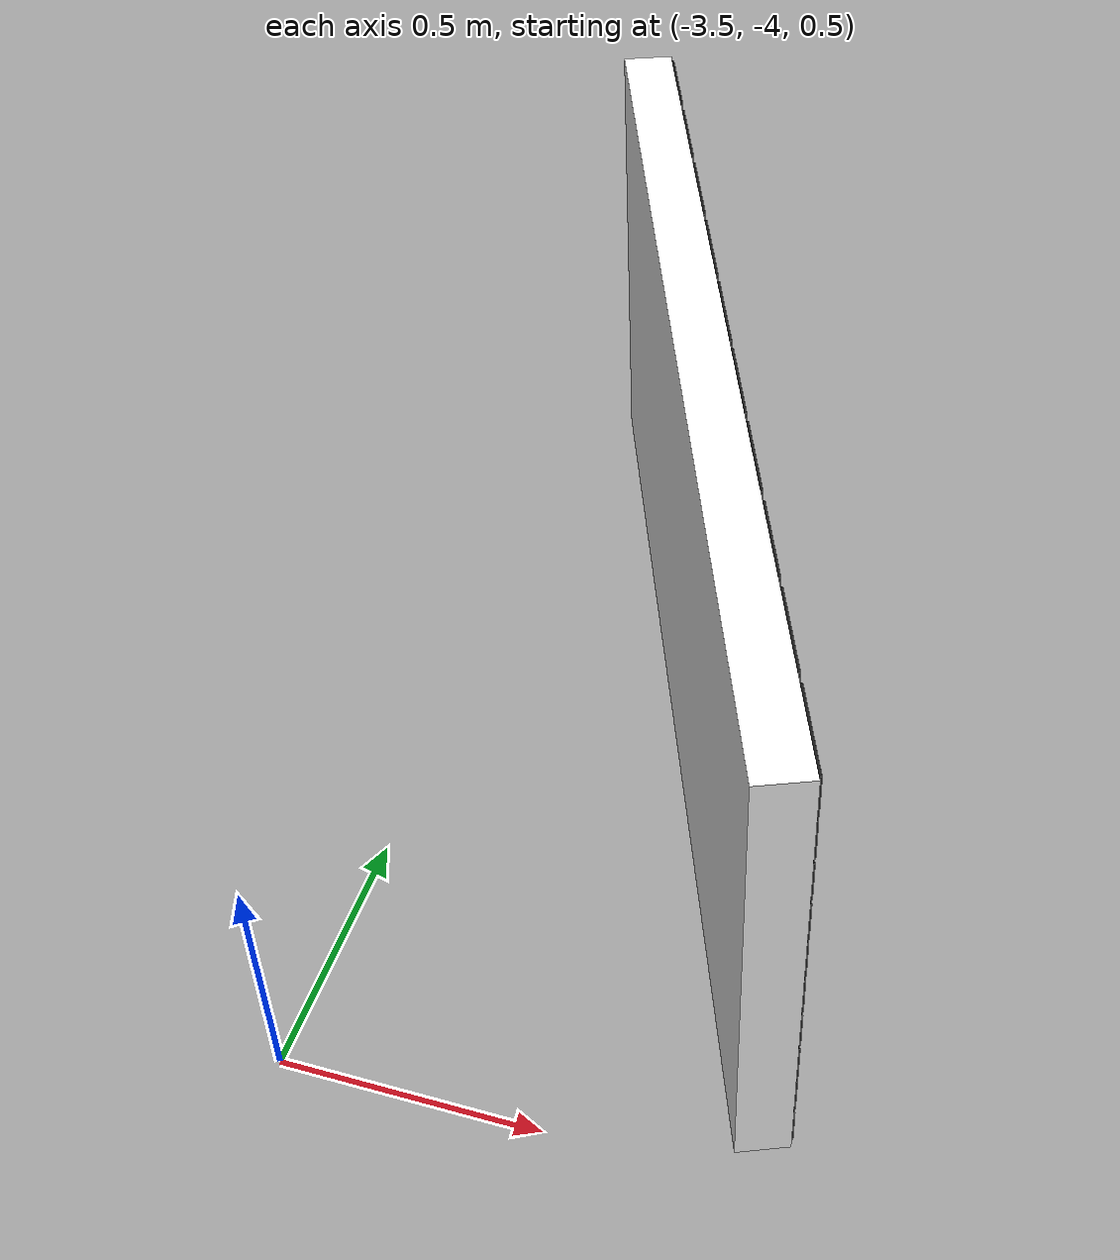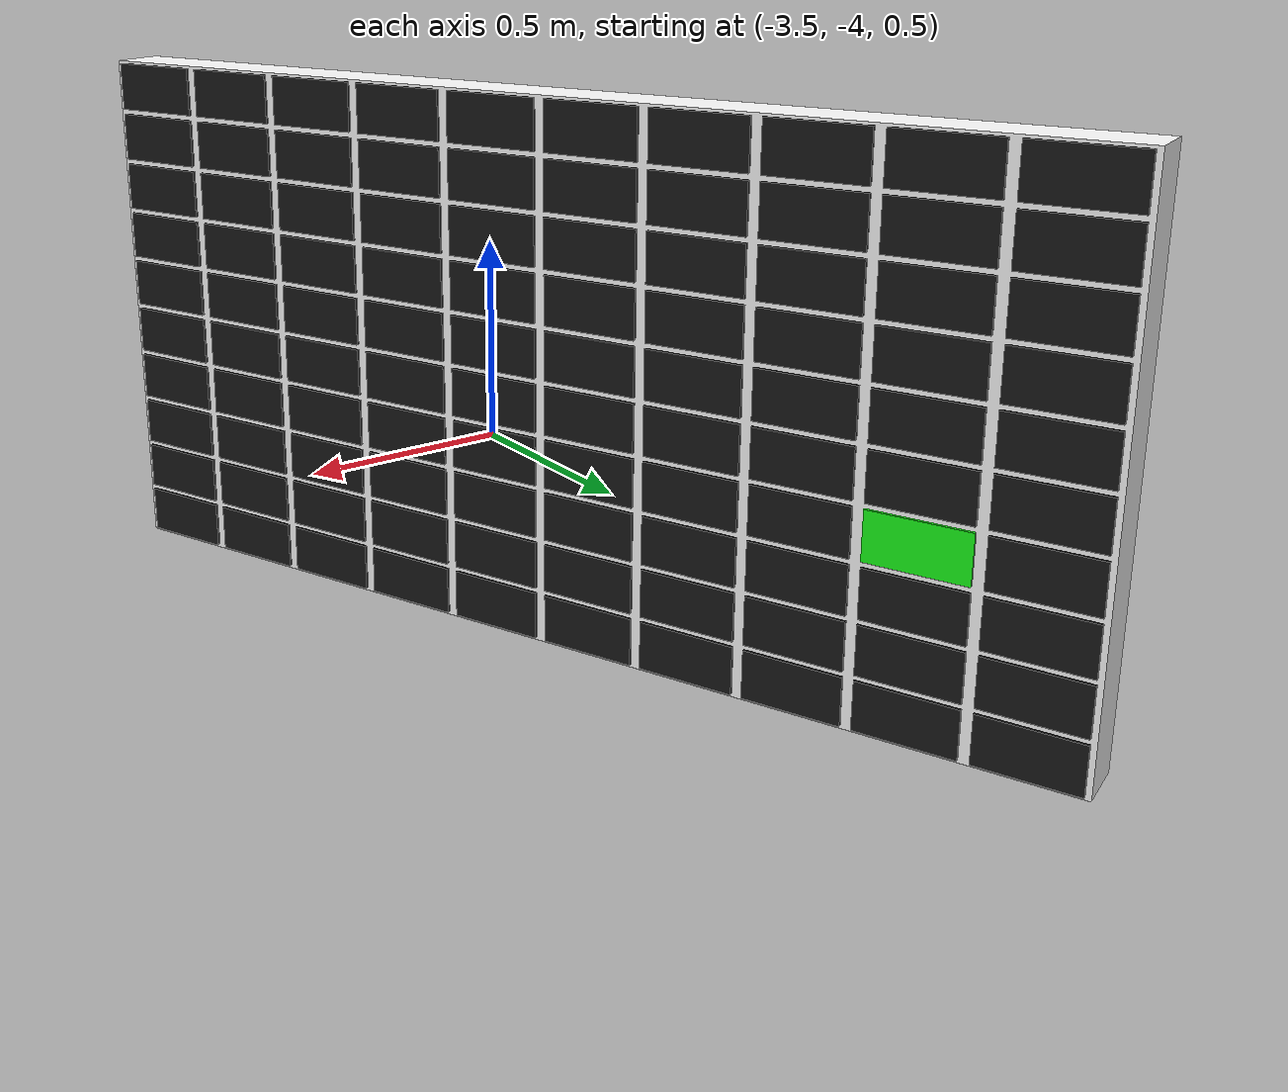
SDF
<sdf version="1.9">
 <world name="forest_with_panels">
  <model name="panel_3">
   <pose>-3 -3 1 -2.75 -1.57 0</pose>
   <static>true</static>
   <link name="panel_outline">
    <visual name="panel_outline_visual">
     <geometry><box><size>1.0 2.0 0.1</size></box></geometry>
     <material>
      <ambient>1.0 1.0 1.0 1</ambient>
      <diffuse>1.0 1.0 1.0 1</diffuse>
      <specular>1.0 1.0 1.0 1</specular>
      <emissive>0 0 0 0</emissive>
     </material>
    </visual>
   </link>
   <link name="block_1_1">
    <visual name="block_1_1_visual">
     <pose>0.45 0.9 0.05 0 0 0</pose>
     <geometry><box><size>0.09 0.18 0.01</size></box></geometry>
     <material>
      <ambient>0.0 0.0 0.0 1</ambient>
      <diffuse>0.1 0.1 0.1 1</diffuse>
      <specular>0.1 0.1 0.1 1</specular>
      <emissive>0 0 0 0</emissive>
     </material>
    </visual>
   </link>
   <link name="block_2_1">
    <visual name="block_2_1_visual">
     <pose>0.35 0.9 0.05 0 0 0</pose>
     <geometry><box><size>0.09 0.18 0.01</size></box></geometry>
     <material>
      <ambient>0.0 0.0 0.0 1</ambient>
      <diffuse>0.1 0.1 0.1 1</diffuse>
      <specular>0.1 0.1 0.1 1</specular>
      <emissive>0 0 0 0</emissive>
     </material>
    </visual>
   </link>
   <link name="block_3_1">
    <visual name="block_3_1_visual">
     <pose>0.25 0.9 0.05 0 0 0</pose>
     <geometry><box><size>0.09 0.18 0.01</size></box></geometry>
     <material>
      <ambient>0.0 0.0 0.0 1</ambient>
      <diffuse>0.1 0.1 0.1 1</diffuse>
      <specular>0.1 0.1 0.1 1</specular>
      <emissive>0 0 0 0</emissive>
     </material>
    </visual>
   </link>
   <link name="block_4_1">
    <visual name="block_4_1_visual">
     <pose>0.15 0.9 0.05 0 0 0</pose>
     <geometry><box><size>0.09 0.18 0.01</size></box></geometry>
     <material>
      <ambient>0.0 0.0 0.0 1</ambient>
      <diffuse>0.1 0.1 0.1 1</diffuse>
      <specular>0.1 0.1 0.1 1</specular>
      <emissive>0 0 0 0</emissive>
     </material>
    </visual>
   </link>
   <link name="block_5_1">
    <visual name="block_5_1_visual">
     <pose>0.05 0.9 0.05 0 0 0</pose>
     <geometry><box><size>0.09 0.18 0.01</size></box></geometry>
     <material>
      <ambient>0.0 0.0 0.0 1</ambient>
      <diffuse>0.1 0.1 0.1 1</diffuse>
      <specular>0.1 0.1 0.1 1</specular>
      <emissive>0 0 0 0</emissive>
     </material>
    </visual>
   </link>
   <link name="block_6_1">
    <visual name="block_6_1_visual">
     <pose>-0.05 0.9 0.05 0 0 0</pose>
     <geometry><box><size>0.09 0.18 0.01</size></box></geometry>
     <material>
      <ambient>0.0 0.0 0.0 1</ambient>
      <diffuse>0.1 0.1 0.1 1</diffuse>
      <specular>0.1 0.1 0.1 1</specular>
      <emissive>0 0 0 0</emissive>
     </material>
    </visual>
   </link>
   <link name="block_7_1">
    <visual name="block_7_1_visual">
     <pose>-0.15 0.9 0.05 0 0 0</pose>
     <geometry><box><size>0.09 0.18 0.01</size></box></geometry>
     <material>
      <ambient>0.0 0.0 0.0 1</ambient>
      <diffuse>0.1 0.1 0.1 1</diffuse>
      <specular>0.1 0.1 0.1 1</specular>
      <emissive>0 0 0 0</emissive>
     </material>
    </visual>
   </link>
   <link name="block_8_1">
    <visual name="block_8_1_visual">
     <pose>-0.25 0.9 0.05 0 0 0</pose>
     <geometry><box><size>0.09 0.18 0.01</size></box></geometry>
     <material>
      <ambient>0.0 0.0 0.0 1</ambient>
      <diffuse>0.1 0.1 0.1 1</diffuse>
      <specular>0.1 0.1 0.1 1</specular>
      <emissive>0 0 0 0</emissive>
     </material>
    </visual>
   </link>
   <link name="block_9_1">
    <visual name="block_9_1_visual">
     <pose>-0.35 0.9 0.05 0 0 0</pose>
     <geometry><box><size>0.09 0.18 0.01</size></box></geometry>
     <material>
      <ambient>0.0 0.0 0.0 1</ambient>
      <diffuse>0.1 0.1 0.1 1</diffuse>
      <specular>0.1 0.1 0.1 1</specular>
      <emissive>0 0 0 0</emissive>
     </material>
    </visual>
   </link>
   <link name="block_10_1">
    <visual name="block_10_1_visual">
     <pose>-0.45 0.9 0.05 0 0 0</pose>
     <geometry><box><size>0.09 0.18 0.01</size></box></geometry>
     <material>
      <ambient>0.0 0.0 0.0 1</ambient>
      <diffuse>0.1 0.1 0.1 1</diffuse>
      <specular>0.1 0.1 0.1 1</specular>
      <emissive>0 0 0 0</emissive>
     </material>
    </visual>
   </link>
   <link name="block_1_2">
    <visual name="block_1_2_visual">
     <pose>0.45 0.7 0.05 0 0 0</pose>
     <geometry><box><size>0.09 0.18 0.01</size></box></geometry>
     <material>
      <ambient>0.0 0.0 0.0 1</ambient>
      <diffuse>0.1 0.1 0.1 1</diffuse>
      <specular>0.1 0.1 0.1 1</specular>
      <emissive>0 0 0 0</emissive>
     </material>
    </visual>
   </link>
   <link name="block_2_2">
    <visual name="block_2_2_visual">
     <pose>0.35 0.7 0.05 0 0 0</pose>
     <geometry><box><size>0.09 0.18 0.01</size></box></geometry>
     <material>
      <ambient>0.0 0.0 0.0 1</ambient>
      <diffuse>0.1 0.1 0.1 1</diffuse>
      <specular>0.1 0.1 0.1 1</specular>
      <emissive>0 0 0 0</emissive>
     </material>
    </visual>
   </link>
   <link name="block_3_2">
    <visual name="block_3_2_visual">
     <pose>0.25 0.7 0.05 0 0 0</pose>
     <geometry><box><size>0.09 0.18 0.01</size></box></geometry>
     <material>
      <ambient>0.0 0.0 0.0 1</ambient>
      <diffuse>0.1 0.1 0.1 1</diffuse>
      <specular>0.1 0.1 0.1 1</specular>
      <emissive>0 0 0 0</emissive>
     </material>
    </visual>
   </link>
   <link name="block_4_2">
    <visual name="block_4_2_visual">
     <pose>0.15 0.7 0.05 0 0 0</pose>
     <geometry><box><size>0.09 0.18 0.01</size></box></geometry>
     <material>
      <ambient>0.0 0.0 0.0 1</ambient>
      <diffuse>0.1 0.1 0.1 1</diffuse>
      <specular>0.1 0.1 0.1 1</specular>
      <emissive>0 0 0 0</emissive>
     </material>
    </visual>
   </link>
   <link name="block_5_2">
    <visual name="block_5_2_visual">
     <pose>0.05 0.7 0.05 0 0 0</pose>
     <geometry><box><size>0.09 0.18 0.01</size></box></geometry>
     <material>
      <ambient>0.0 0.0 0.0 1</ambient>
      <diffuse>0.1 0.1 0.1 1</diffuse>
      <specular>0.1 0.1 0.1 1</specular>
      <emissive>0 0 0 0</emissive>
     </material>
    </visual>
   </link>
   <link name="block_6_2">
    <visual name="block_6_2_visual">
     <pose>-0.05 0.7 0.05 0 0 0</pose>
     <geometry><box><size>0.09 0.18 0.01</size></box></geometry>
     <material>
      <ambient>0.0 0.0 0.0 1</ambient>
      <diffuse>0.1 0.1 0.1 1</diffuse>
      <specular>0.1 0.1 0.1 1</specular>
      <emissive>0 0 0 0</emissive>
     </material>
    </visual>
   </link>
   <link name="block_7_2">
    <visual name="block_7_2_visual">
     <pose>-0.15 0.7 0.05 0 0 0</pose>
     <geometry><box><size>0.09 0.18 0.01</size></box></geometry>
     <material>
      <ambient>0.0 0.0 0.0 1</ambient>
      <diffuse>0.1 0.1 0.1 1</diffuse>
      <specular>0.1 0.1 0.1 1</specular>
      <emissive>0 0 0 0</emissive>
     </material>
    </visual>
   </link>
   <link name="block_8_2">
    <visual name="block_8_2_visual">
     <pose>-0.25 0.7 0.05 0 0 0</pose>
     <geometry><box><size>0.09 0.18 0.01</size></box></geometry>
     <material>
      <ambient>0.0 0.0 0.0 1</ambient>
      <diffuse>0.1 0.1 0.1 1</diffuse>
      <specular>0.1 0.1 0.1 1</specular>
      <emissive>0 0 0 0</emissive>
     </material>
    </visual>
   </link>
   <link name="block_9_2">
    <visual name="block_9_2_visual">
     <pose>-0.35 0.7 0.05 0 0 0</pose>
     <geometry><box><size>0.09 0.18 0.01</size></box></geometry>
     <material>
      <ambient>0.0 0.0 0.0 1</ambient>
      <diffuse>0.1 0.1 0.1 1</diffuse>
      <specular>0.1 0.1 0.1 1</specular>
      <emissive>0 0 0 0</emissive>
     </material>
    </visual>
   </link>
   <link name="block_10_2">
    <visual name="block_10_2_visual">
     <pose>-0.45 0.7 0.05 0 0 0</pose>
     <geometry><box><size>0.09 0.18 0.01</size></box></geometry>
     <material>
      <ambient>0.0 0.0 0.0 1</ambient>
      <diffuse>0.1 0.1 0.1 1</diffuse>
      <specular>0.1 0.1 0.1 1</specular>
      <emissive>0 0 0 0</emissive>
     </material>
    </visual>
   </link>
   <link name="block_1_3">
    <visual name="block_1_3_visual">
     <pose>0.45 0.5 0.05 0 0 0</pose>
     <geometry><box><size>0.09 0.18 0.01</size></box></geometry>
     <material>
      <ambient>0.0 0.0 0.0 1</ambient>
      <diffuse>0.1 0.1 0.1 1</diffuse>
      <specular>0.1 0.1 0.1 1</specular>
      <emissive>0 0 0 0</emissive>
     </material>
    </visual>
   </link>
   <link name="block_2_3">
    <visual name="block_2_3_visual">
     <pose>0.35 0.5 0.05 0 0 0</pose>
     <geometry><box><size>0.09 0.18 0.01</size></box></geometry>
     <material>
      <ambient>0.0 0.0 0.0 1</ambient>
      <diffuse>0.1 0.1 0.1 1</diffuse>
      <specular>0.1 0.1 0.1 1</specular>
      <emissive>0 0 0 0</emissive>
     </material>
    </visual>
   </link>
   <link name="block_3_3">
    <visual name="block_3_3_visual">
     <pose>0.25 0.5 0.05 0 0 0</pose>
     <geometry><box><size>0.09 0.18 0.01</size></box></geometry>
     <material>
      <ambient>0.0 0.0 0.0 1</ambient>
      <diffuse>0.1 0.1 0.1 1</diffuse>
      <specular>0.1 0.1 0.1 1</specular>
      <emissive>0 0 0 0</emissive>
     </material>
    </visual>
   </link>
   <link name="block_4_3">
    <visual name="block_4_3_visual">
     <pose>0.15 0.5 0.05 0 0 0</pose>
     <geometry><box><size>0.09 0.18 0.01</size></box></geometry>
     <material>
      <ambient>0.0 0.0 0.0 1</ambient>
      <diffuse>0.1 0.1 0.1 1</diffuse>
      <specular>0.1 0.1 0.1 1</specular>
      <emissive>0 0 0 0</emissive>
     </material>
    </visual>
   </link>
   <link name="block_5_3">
    <visual name="block_5_3_visual">
     <pose>0.05 0.5 0.05 0 0 0</pose>
     <geometry><box><size>0.09 0.18 0.01</size></box></geometry>
     <material>
      <ambient>0.0 0.0 0.0 1</ambient>
      <diffuse>0.1 0.1 0.1 1</diffuse>
      <specular>0.1 0.1 0.1 1</specular>
      <emissive>0 0 0 0</emissive>
     </material>
    </visual>
   </link>
   <link name="block_6_3">
    <visual name="block_6_3_visual">
     <pose>-0.05 0.5 0.05 0 0 0</pose>
     <geometry><box><size>0.09 0.18 0.01</size></box></geometry>
     <material>
      <ambient>0.0 0.0 0.0 1</ambient>
      <diffuse>0.1 0.1 0.1 1</diffuse>
      <specular>0.1 0.1 0.1 1</specular>
      <emissive>0 0 0 0</emissive>
     </material>
    </visual>
   </link>
   <link name="block_7_3">
    <visual name="block_7_3_visual">
     <pose>-0.15 0.5 0.05 0 0 0</pose>
     <geometry><box><size>0.09 0.18 0.01</size></box></geometry>
     <material>
      <ambient>0.0 0.0 0.0 1</ambient>
      <diffuse>0.1 0.1 0.1 1</diffuse>
      <specular>0.1 0.1 0.1 1</specular>
      <emissive>0 0 0 0</emissive>
     </material>
    </visual>
   </link>
   <link name="block_8_3">
    <visual name="block_8_3_visual">
     <pose>-0.25 0.5 0.05 0 0 0</pose>
     <geometry><box><size>0.09 0.18 0.01</size></box></geometry>
     <material>
      <ambient>0.0 0.0 0.0 1</ambient>
      <diffuse>0.1 0.1 0.1 1</diffuse>
      <specular>0.1 0.1 0.1 1</specular>
      <emissive>0 0 0 0</emissive>
     </material>
    </visual>
   </link>
   <link name="block_9_3">
    <visual name="block_9_3_visual">
     <pose>-0.35 0.5 0.05 0 0 0</pose>
     <geometry><box><size>0.09 0.18 0.01</size></box></geometry>
     <material>
      <ambient>0.0 0.0 0.0 1</ambient>
      <diffuse>0.1 0.1 0.1 1</diffuse>
      <specular>0.1 0.1 0.1 1</specular>
      <emissive>0 0 0 0</emissive>
     </material>
    </visual>
   </link>
   <link name="block_10_3">
    <visual name="block_10_3_visual">
     <pose>-0.45 0.5 0.05 0 0 0</pose>
     <geometry><box><size>0.09 0.18 0.01</size></box></geometry>
     <material>
      <ambient>0.0 0.0 0.0 1</ambient>
      <diffuse>0.1 0.1 0.1 1</diffuse>
      <specular>0.1 0.1 0.1 1</specular>
      <emissive>0 0 0 0</emissive>
     </material>
    </visual>
   </link>
   <link name="block_1_4">
    <visual name="block_1_4_visual">
     <pose>0.45 0.3 0.05 0 0 0</pose>
     <geometry><box><size>0.09 0.18 0.01</size></box></geometry>
     <material>
      <ambient>0.0 0.0 0.0 1</ambient>
      <diffuse>0.1 0.1 0.1 1</diffuse>
      <specular>0.1 0.1 0.1 1</specular>
      <emissive>0 0 0 0</emissive>
     </material>
    </visual>
   </link>
   <link name="block_2_4">
    <visual name="block_2_4_visual">
     <pose>0.35 0.3 0.05 0 0 0</pose>
     <geometry><box><size>0.09 0.18 0.01</size></box></geometry>
     <material>
      <ambient>0.0 0.0 0.0 1</ambient>
      <diffuse>0.1 0.1 0.1 1</diffuse>
      <specular>0.1 0.1 0.1 1</specular>
      <emissive>0 0 0 0</emissive>
     </material>
    </visual>
   </link>
   <link name="block_3_4">
    <visual name="block_3_4_visual">
     <pose>0.25 0.3 0.05 0 0 0</pose>
     <geometry><box><size>0.09 0.18 0.01</size></box></geometry>
     <material>
      <ambient>0.0 0.0 0.0 1</ambient>
      <diffuse>0.1 0.1 0.1 1</diffuse>
      <specular>0.1 0.1 0.1 1</specular>
      <emissive>0 0 0 0</emissive>
     </material>
    </visual>
   </link>
   <link name="block_4_4">
    <visual name="block_4_4_visual">
     <pose>0.15 0.3 0.05 0 0 0</pose>
     <geometry><box><size>0.09 0.18 0.01</size></box></geometry>
     <material>
      <ambient>0.0 0.0 0.0 1</ambient>
      <diffuse>0.1 0.1 0.1 1</diffuse>
      <specular>0.1 0.1 0.1 1</specular>
      <emissive>0 0 0 0</emissive>
     </material>
    </visual>
   </link>
   <link name="block_5_4">
    <visual name="block_5_4_visual">
     <pose>0.05 0.3 0.05 0 0 0</pose>
     <geometry><box><size>0.09 0.18 0.01</size></box></geometry>
     <material>
      <ambient>0.0 0.0 0.0 1</ambient>
      <diffuse>0.1 0.1 0.1 1</diffuse>
      <specular>0.1 0.1 0.1 1</specular>
      <emissive>0 0 0 0</emissive>
     </material>
    </visual>
   </link>
   <link name="block_6_4">
    <visual name="block_6_4_visual">
     <pose>-0.05 0.3 0.05 0 0 0</pose>
     <geometry><box><size>0.09 0.18 0.01</size></box></geometry>
     <material>
      <ambient>0.0 0.0 0.0 1</ambient>
      <diffuse>0.1 0.1 0.1 1</diffuse>
      <specular>0.1 0.1 0.1 1</specular>
      <emissive>0 0 0 0</emissive>
     </material>
    </visual>
   </link>
   <link name="block_7_4">
    <visual name="block_7_4_visual">
     <pose>-0.15 0.3 0.05 0 0 0</pose>
     <geometry><box><size>0.09 0.18 0.01</size></box></geometry>
     <material>
      <ambient>0.0 0.0 0.0 1</ambient>
      <diffuse>0.1 0.1 0.1 1</diffuse>
      <specular>0.1 0.1 0.1 1</specular>
      <emissive>0 0 0 0</emissive>
     </material>
    </visual>
   </link>
   <link name="block_8_4">
    <visual name="block_8_4_visual">
     <pose>-0.25 0.3 0.05 0 0 0</pose>
     <geometry><box><size>0.09 0.18 0.01</size></box></geometry>
     <material>
      <ambient>0.0 0.0 0.0 1</ambient>
      <diffuse>0.1 0.1 0.1 1</diffuse>
      <specular>0.1 0.1 0.1 1</specular>
      <emissive>0 0 0 0</emissive>
     </material>
    </visual>
   </link>
   <link name="block_9_4">
    <visual name="block_9_4_visual">
     <pose>-0.35 0.3 0.05 0 0 0</pose>
     <geometry><box><size>0.09 0.18 0.01</size></box></geometry>
     <material>
      <ambient>0.0 0.0 0.0 1</ambient>
      <diffuse>0.1 0.1 0.1 1</diffuse>
      <specular>0.1 0.1 0.1 1</specular>
      <emissive>0 0 0 0</emissive>
     </material>
    </visual>
   </link>
   <link name="block_10_4">
    <visual name="block_10_2_visual">
     <pose>-0.45 0.3 0.05 0 0 0</pose>
     <geometry><box><size>0.09 0.18 0.01</size></box></geometry>
     <material>
      <ambient>0.0 0.0 0.0 1</ambient>
      <diffuse>0.1 0.1 0.1 1</diffuse>
      <specular>0.1 0.1 0.1 1</specular>
      <emissive>0 0 0 0</emissive>
     </material>
    </visual>
   </link>
   <link name="block_1_5">
    <visual name="block_1_5_visual">
     <pose>0.45 0.1 0.05 0 0 0</pose>
     <geometry><box><size>0.09 0.18 0.01</size></box></geometry>
     <material>
      <ambient>0.0 0.0 0.0 1</ambient>
      <diffuse>0.1 0.1 0.1 1</diffuse>
      <specular>0.1 0.1 0.1 1</specular>
      <emissive>0 0 0 0</emissive>
     </material>
    </visual>
   </link>
   <link name="block_2_5">
    <visual name="block_2_5_visual">
     <pose>0.35 0.1 0.05 0 0 0</pose>
     <geometry><box><size>0.09 0.18 0.01</size></box></geometry>
     <material>
      <ambient>0.0 0.0 0.0 1</ambient>
      <diffuse>0.1 0.1 0.1 1</diffuse>
      <specular>0.1 0.1 0.1 1</specular>
      <emissive>0 0 0 0</emissive>
     </material>
    </visual>
   </link>
   <link name="block_3_5">
    <visual name="block_3_5_visual">
     <pose>0.25 0.1 0.05 0 0 0</pose>
     <geometry><box><size>0.09 0.18 0.01</size></box></geometry>
     <material>
      <ambient>0.0 0.0 0.0 1</ambient>
      <diffuse>0.1 0.1 0.1 1</diffuse>
      <specular>0.1 0.1 0.1 1</specular>
      <emissive>0 0 0 0</emissive>
     </material>
    </visual>
   </link>
   <link name="block_4_5">
    <visual name="block_4_5_visual">
     <pose>0.15 0.1 0.05 0 0 0</pose>
     <geometry><box><size>0.09 0.18 0.01</size></box></geometry>
     <material>
      <ambient>0.0 0.0 0.0 1</ambient>
      <diffuse>0.1 0.1 0.1 1</diffuse>
      <specular>0.1 0.1 0.1 1</specular>
      <emissive>0 0 0 0</emissive>
     </material>
    </visual>
   </link>
   <link name="block_5_5">
    <visual name="block_5_5_visual">
     <pose>0.05 0.1 0.05 0 0 0</pose>
     <geometry><box><size>0.09 0.18 0.01</size></box></geometry>
     <material>
      <ambient>0.0 0.0 0.0 1</ambient>
      <diffuse>0.1 0.1 0.1 1</diffuse>
      <specular>0.1 0.1 0.1 1</specular>
      <emissive>0 0 0 0</emissive>
     </material>
    </visual>
   </link>
   <link name="block_6_5">
    <visual name="block_6_5_visual">
     <pose>-0.05 0.1 0.05 0 0 0</pose>
     <geometry><box><size>0.09 0.18 0.01</size></box></geometry>
     <material>
      <ambient>0.0 0.0 0.0 1</ambient>
      <diffuse>0.1 0.1 0.1 1</diffuse>
      <specular>0.1 0.1 0.1 1</specular>
      <emissive>0 0 0 0</emissive>
     </material>
    </visual>
   </link>
   <link name="block_7_5">
    <visual name="block_7_5_visual">
     <pose>-0.15 0.1 0.05 0 0 0</pose>
     <geometry><box><size>0.09 0.18 0.01</size></box></geometry>
     <material>
      <ambient>0.0 0.0 0.0 1</ambient>
      <diffuse>0.1 0.1 0.1 1</diffuse>
      <specular>0.1 0.1 0.1 1</specular>
      <emissive>0 0 0 0</emissive>
     </material>
    </visual>
   </link>
   <link name="block_8_5">
    <visual name="block_8_5_visual">
     <pose>-0.25 0.1 0.05 0 0 0</pose>
     <geometry><box><size>0.09 0.18 0.01</size></box></geometry>
     <material>
      <ambient>0.0 0.0 0.0 1</ambient>
      <diffuse>0.1 0.1 0.1 1</diffuse>
      <specular>0.1 0.1 0.1 1</specular>
      <emissive>0 0 0 0</emissive>
     </material>
    </visual>
   </link>
   <link name="block_9_5">
    <visual name="block_9_5_visual">
     <pose>-0.35 0.1 0.05 0 0 0</pose>
     <geometry><box><size>0.09 0.18 0.01</size></box></geometry>
     <material>
      <ambient>0.0 0.0 0.0 1</ambient>
      <diffuse>0.1 0.1 0.1 1</diffuse>
      <specular>0.1 0.1 0.1 1</specular>
      <emissive>0 0 0 0</emissive>
     </material>
    </visual>
   </link>
   <link name="block_10_5">
    <visual name="block_10_5_visual">
     <pose>-0.45 0.1 0.05 0 0 0</pose>
     <geometry><box><size>0.09 0.18 0.01</size></box></geometry>
     <material>
      <ambient>0.0 0.0 0.0 1</ambient>
      <diffuse>0.1 0.1 0.1 1</diffuse>
      <specular>0.1 0.1 0.1 1</specular>
      <emissive>0 0 0 0</emissive>
     </material>
    </visual>
   </link>
   <link name="block_1_6">
    <visual name="block_1_6_visual">
     <pose>0.45 -0.1 0.05 0 0 0</pose>
     <geometry><box><size>0.09 0.18 0.01</size></box></geometry>
     <material>
      <ambient>0.0 0.0 0.0 1</ambient>
      <diffuse>0.1 0.1 0.1 1</diffuse>
      <specular>0.1 0.1 0.1 1</specular>
      <emissive>0 0 0 0</emissive>
     </material>
    </visual>
   </link>
   <link name="block_2_6">
    <visual name="block_2_6_visual">
     <pose>0.35 -0.1 0.05 0 0 0</pose>
     <geometry><box><size>0.09 0.18 0.01</size></box></geometry>
     <material>
      <ambient>0.0 0.0 0.0 1</ambient>
      <diffuse>0.1 0.1 0.1 1</diffuse>
      <specular>0.1 0.1 0.1 1</specular>
      <emissive>0 0 0 0</emissive>
     </material>
    </visual>
   </link>
   <link name="block_3_6">
    <visual name="block_3_6_visual">
     <pose>0.25 -0.1 0.05 0 0 0</pose>
     <geometry><box><size>0.09 0.18 0.01</size></box></geometry>
     <material>
      <ambient>0.0 0.0 0.0 1</ambient>
      <diffuse>0.1 0.1 0.1 1</diffuse>
      <specular>0.1 0.1 0.1 1</specular>
      <emissive>0 0 0 0</emissive>
     </material>
    </visual>
   </link>
   <link name="block_4_6">
    <visual name="block_4_6_visual">
     <pose>0.15 -0.1 0.05 0 0 0</pose>
     <geometry><box><size>0.09 0.18 0.01</size></box></geometry>
     <material>
      <ambient>0.0 0.0 0.0 1</ambient>
      <diffuse>0.1 0.1 0.1 1</diffuse>
      <specular>0.1 0.1 0.1 1</specular>
      <emissive>0 0 0 0</emissive>
     </material>
    </visual>
   </link>
   <link name="block_5_6">
    <visual name="block_5_6_visual">
     <pose>0.05 -0.1 0.05 0 0 0</pose>
     <geometry><box><size>0.09 0.18 0.01</size></box></geometry>
     <material>
      <ambient>0.0 0.0 0.0 1</ambient>
      <diffuse>0.1 0.1 0.1 1</diffuse>
      <specular>0.1 0.1 0.1 1</specular>
      <emissive>0 0 0 0</emissive>
     </material>
    </visual>
   </link>
   <link name="block_6_6">
    <visual name="block_6_6_visual">
     <pose>-0.05 -0.1 0.05 0 0 0</pose>
     <geometry><box><size>0.09 0.18 0.01</size></box></geometry>
     <material>
      <ambient>0.0 0.0 0.0 1</ambient>
      <diffuse>0.1 0.1 0.1 1</diffuse>
      <specular>0.1 0.1 0.1 1</specular>
      <emissive>0 0 0 0</emissive>
     </material>
    </visual>
   </link>
   <link name="block_7_6">
    <visual name="block_7_6_visual">
     <pose>-0.15 -0.1 0.05 0 0 0</pose>
     <geometry><box><size>0.09 0.18 0.01</size></box></geometry>
     <material>
      <ambient>0.0 0.0 0.0 1</ambient>
      <diffuse>0.1 0.1 0.1 1</diffuse>
      <specular>0.1 0.1 0.1 1</specular>
      <emissive>0 0 0 0</emissive>
     </material>
    </visual>
   </link>
   <link name="block_8_6">
    <visual name="block_8_2_visual">
     <pose>-0.25 -0.1 0.05 0 0 0</pose>
     <geometry><box><size>0.09 0.18 0.01</size></box></geometry>
     <material>
      <ambient>0.0 0.0 0.0 1</ambient>
      <diffuse>0.1 0.1 0.1 1</diffuse>
      <specular>0.1 0.1 0.1 1</specular>
      <emissive>0 0 0 0</emissive>
     </material>
    </visual>
   </link>
   <link name="block_9_6">
    <visual name="block_9_2_visual">
     <pose>-0.35 -0.1 0.05 0 0 0</pose>
     <geometry><box><size>0.09 0.18 0.01</size></box></geometry>
     <material>
      <ambient>0.0 0.0 0.0 1</ambient>
      <diffuse>0.1 0.1 0.1 1</diffuse>
      <specular>0.1 0.1 0.1 1</specular>
      <emissive>0 0 0 0</emissive>
     </material>
    </visual>
   </link>
   <link name="block_10_6">
    <visual name="block_10_6_visual">
     <pose>-0.45 -0.1 0.05 0 0 0</pose>
     <geometry><box><size>0.09 0.18 0.01</size></box></geometry>
     <material>
      <ambient>0.0 0.0 0.0 1</ambient>
      <diffuse>0.1 0.1 0.1 1</diffuse>
      <specular>0.1 0.1 0.1 1</specular>
      <emissive>0 0 0 0</emissive>
     </material>
    </visual>
   </link>
   <link name="block_1_7">
    <visual name="block_1_7_visual">
     <pose>0.45 -0.3 0.05 0 0 0</pose>
     <geometry><box><size>0.09 0.18 0.01</size></box></geometry>
     <material>
      <ambient>0.0 0.0 0.0 1</ambient>
      <diffuse>0.1 0.1 0.1 1</diffuse>
      <specular>0.1 0.1 0.1 1</specular>
      <emissive>0 0 0 0</emissive>
     </material>
    </visual>
   </link>
   <link name="block_2_7">
    <visual name="block_2_7_visual">
     <pose>0.35 -0.3 0.05 0 0 0</pose>
     <geometry><box><size>0.09 0.18 0.01</size></box></geometry>
     <material>
      <ambient>0.0 0.0 0.0 1</ambient>
      <diffuse>0.1 0.1 0.1 1</diffuse>
      <specular>0.1 0.1 0.1 1</specular>
      <emissive>0 0 0 0</emissive>
     </material>
    </visual>
   </link>
   <link name="block_3_7">
    <visual name="block_3_7_visual">
     <pose>0.25 -0.3 0.05 0 0 0</pose>
     <geometry><box><size>0.09 0.18 0.01</size></box></geometry>
     <material>
      <ambient>0.0 0.0 0.0 1</ambient>
      <diffuse>0.1 0.1 0.1 1</diffuse>
      <specular>0.1 0.1 0.1 1</specular>
      <emissive>0 0 0 0</emissive>
     </material>
    </visual>
   </link>
   <link name="block_4_7">
    <visual name="block_4_7_visual">
     <pose>0.15 -0.3 0.05 0 0 0</pose>
     <geometry><box><size>0.09 0.18 0.01</size></box></geometry>
     <material>
      <ambient>0.0 0.0 0.0 1</ambient>
      <diffuse>0.1 0.1 0.1 1</diffuse>
      <specular>0.1 0.1 0.1 1</specular>
      <emissive>0 0 0 0</emissive>
     </material>
    </visual>
   </link>
   <link name="block_5_7">
    <visual name="block_5_7_visual">
     <pose>0.05 -0.3 0.05 0 0 0</pose>
     <geometry><box><size>0.09 0.18 0.01</size></box></geometry>
     <material>
      <ambient>0.0 0.0 0.0 1</ambient>
      <diffuse>0.1 0.1 0.1 1</diffuse>
      <specular>0.1 0.1 0.1 1</specular>
      <emissive>0 0 0 0</emissive>
     </material>
    </visual>
   </link>
   <link name="block_6_7">
    <visual name="block_6_7_visual">
     <pose>-0.05 -0.3 0.05 0 0 0</pose>
     <geometry><box><size>0.09 0.18 0.01</size></box></geometry>
     <material>
      <ambient>0.0 0.0 0.0 1</ambient>
      <diffuse>0.1 0.1 0.1 1</diffuse>
      <specular>0.1 0.1 0.1 1</specular>
      <emissive>0 0 0 0</emissive>
     </material>
    </visual>
   </link>
   <link name="block_7_7">
    <visual name="block_7_7_visual">
     <pose>-0.15 -0.3 0.05 0 0 0</pose>
     <geometry><box><size>0.09 0.18 0.01</size></box></geometry>
     <material>
      <ambient>0.0 0.0 0.0 1</ambient>
      <diffuse>0.1 0.1 0.1 1</diffuse>
      <specular>0.1 0.1 0.1 1</specular>
      <emissive>0 0 0 0</emissive>
     </material>
    </visual>
   </link>
   <link name="block_8_7">
    <visual name="block_8_7_visual">
     <pose>-0.25 -0.3 0.05 0 0 0</pose>
     <geometry><box><size>0.09 0.18 0.01</size></box></geometry>
     <material>
      <ambient>0.0 0.0 0.0 1</ambient>
      <diffuse>0.1 0.1 0.1 1</diffuse>
      <specular>0.1 0.1 0.1 1</specular>
      <emissive>0 0 0 0</emissive>
     </material>
    </visual>
   </link>
   <link name="block_9_7">
    <visual name="block_9_7_visual">
     <pose>-0.35 -0.3 0.05 0 0 0</pose>
     <geometry><box><size>0.09 0.18 0.01</size></box></geometry>
     <material>
      <ambient>0.0 0.0 0.0 1</ambient>
      <diffuse>0.1 0.1 0.1 1</diffuse>
      <specular>0.1 0.1 0.1 1</specular>
      <emissive>0 0 0 0</emissive>
     </material>
    </visual>
   </link>
   <link name="block_10_7">
    <visual name="block_10_7_visual">
     <pose>-0.45 -0.3 0.05 0 0 0</pose>
     <geometry><box><size>0.09 0.18 0.01</size></box></geometry>
     <material>
      <ambient>0.0 0.0 0.0 1</ambient>
      <diffuse>0.1 0.1 0.1 1</diffuse>
      <specular>0.1 0.1 0.1 1</specular>
      <emissive>0 0 0 0</emissive>
     </material>
    </visual>
   </link>
   <link name="block_1_8">
    <visual name="block_1_8_visual">
     <pose>0.45 -0.5 0.05 0 0 0</pose>
     <geometry><box><size>0.09 0.18 0.01</size></box></geometry>
     <material>
      <ambient>0.0 0.0 0.0 1</ambient>
      <diffuse>0.1 0.1 0.1 1</diffuse>
      <specular>0.1 0.1 0.1 1</specular>
      <emissive>0 0 0 0</emissive>
     </material>
    </visual>
   </link>
   <link name="block_2_8">
    <visual name="block_2_8_visual">
     <pose>0.35 -0.5 0.05 0 0 0</pose>
     <geometry><box><size>0.09 0.18 0.01</size></box></geometry>
     <material>
      <ambient>0.0 0.0 0.0 1</ambient>
      <diffuse>0.1 0.1 0.1 1</diffuse>
      <specular>0.1 0.1 0.1 1</specular>
      <emissive>0 0 0 0</emissive>
     </material>
    </visual>
   </link>
   <link name="block_3_8">
    <visual name="block_3_8_visual">
     <pose>0.25 -0.5 0.05 0 0 0</pose>
     <geometry><box><size>0.09 0.18 0.01</size></box></geometry>
     <material>
      <ambient>0.0 0.0 0.0 1</ambient>
      <diffuse>0.1 0.1 0.1 1</diffuse>
      <specular>0.1 0.1 0.1 1</specular>
      <emissive>0 0 0 0</emissive>
     </material>
    </visual>
   </link>
   <link name="block_4_8">
    <visual name="block_4_8_visual">
     <pose>0.15 -0.5 0.05 0 0 0</pose>
     <geometry><box><size>0.09 0.18 0.01</size></box></geometry>
     <material>
      <ambient>0.0 0.0 0.0 1</ambient>
      <diffuse>0.1 0.1 0.1 1</diffuse>
      <specular>0.1 0.1 0.1 1</specular>
      <emissive>0 0 0 0</emissive>
     </material>
    </visual>
   </link>
   <link name="block_5_8">
    <visual name="block_5_8_visual">
     <pose>0.05 -0.5 0.05 0 0 0</pose>
     <geometry><box><size>0.09 0.18 0.01</size></box></geometry>
     <material>
      <ambient>0.0 0.0 0.0 1</ambient>
      <diffuse>0.1 0.1 0.1 1</diffuse>
      <specular>0.1 0.1 0.1 1</specular>
      <emissive>0 0 0 0</emissive>
     </material>
    </visual>
   </link>
   <link name="block_6_8">
    <visual name="block_6_8_visual">
     <pose>-0.05 -0.5 0.05 0 0 0</pose>
     <geometry><box><size>0.09 0.18 0.01</size></box></geometry>
     <material>
      <ambient>0.0 0.0 0.0 1</ambient>
      <diffuse>0.1 0.1 0.1 1</diffuse>
      <specular>0.1 0.1 0.1 1</specular>
      <emissive>0 0 0 0</emissive>
     </material>
    </visual>
   </link>
   <link name="block_7_8">
    <visual name="block_7_8_visual">
     <pose>-0.15 -0.5 0.05 0 0 0</pose>
     <geometry><box><size>0.09 0.18 0.01</size></box></geometry>
     <material>
      <ambient>0.0 0.0 0.0 1</ambient>
      <diffuse>0.1 0.1 0.1 1</diffuse>
      <specular>0.1 0.1 0.1 1</specular>
      <emissive>0 0 0 0</emissive>
     </material>
    </visual>
   </link>
   <link name="block_8_8">
    <visual name="block_8_8_visual">
     <pose>-0.25 -0.5 0.05 0 0 0</pose>
     <geometry><box><size>0.09 0.18 0.01</size></box></geometry>
     <material>
      <ambient>0.0 0.0 0.0 1</ambient>
      <diffuse>0.1 0.1 0.1 1</diffuse>
      <specular>0.1 0.1 0.1 1</specular>
      <emissive>0 0 0 0</emissive>
     </material>
    </visual>
   </link>
   <link name="block_9_8">
    <visual name="block_9_8_visual">
     <pose>-0.35 -0.5 0.05 0 0 0</pose>
     <geometry><box><size>0.09 0.18 0.01</size></box></geometry>
     <material>
      <ambient>0.0 0.0 0.0 1</ambient>
      <diffuse>0.1 0.1 0.1 1</diffuse>
      <specular>0.1 0.1 0.1 1</specular>
      <emissive>0 0 0 0</emissive>
     </material>
    </visual>
   </link>
   <link name="block_10_8">
    <visual name="block_10_8_visual">
     <pose>-0.45 -0.5 0.05 0 0 0</pose>
     <geometry><box><size>0.09 0.18 0.01</size></box></geometry>
     <material>
      <ambient>0.0 0.0 0.0 1</ambient>
      <diffuse>0.1 0.1 0.1 1</diffuse>
      <specular>0.1 0.1 0.1 1</specular>
      <emissive>0 0 0 0</emissive>
     </material>
    </visual>
   </link>
   <link name="block_1_9">
    <visual name="block_1_9_visual">
     <pose>0.45 -0.7 0.05 0 0 0</pose>
     <geometry><box><size>0.09 0.18 0.01</size></box></geometry>
     <material>
      <ambient>0.0 0.0 0.0 1</ambient>
      <diffuse>0.1 0.1 0.1 1</diffuse>
      <specular>0.1 0.1 0.1 1</specular>
      <emissive>0 0 0 0</emissive>
     </material>
    </visual>
   </link>
   <link name="block_2_9">
    <visual name="block_2_9_visual">
     <pose>0.35 -0.7 0.05 0 0 0</pose>
     <geometry><box><size>0.09 0.18 0.01</size></box></geometry>
     <material>
      <ambient>0.0 0.0 0.0 1</ambient>
      <diffuse>0.1 0.1 0.1 1</diffuse>
      <specular>0.1 0.1 0.1 1</specular>
      <emissive>0 0 0 0</emissive>
     </material>
    </visual>
   </link>
   <link name="block_3_9">
    <visual name="block_3_9_visual">
     <pose>0.25 -0.7 0.05 0 0 0</pose>
     <geometry><box><size>0.09 0.18 0.01</size></box></geometry>
     <material>
      <ambient>0.0 0.0 0.0 1</ambient>
      <diffuse>0.1 0.1 0.1 1</diffuse>
      <specular>0.1 0.1 0.1 1</specular>
      <emissive>0 0 0 0</emissive>
     </material>
    </visual>
   </link>
   <link name="block_4_9">
    <visual name="block_4_9_visual">
     <pose>0.15 -0.7 0.05 0 0 0</pose>
     <geometry><box><size>0.09 0.18 0.01</size></box></geometry>
     <material>
      <ambient>0.0 0.0 0.0 1</ambient>
      <diffuse>0.1 0.1 0.1 1</diffuse>
      <specular>0.1 0.1 0.1 1</specular>
      <emissive>0 0 0 0</emissive>
     </material>
    </visual>
   </link>
   <link name="block_5_9">
    <visual name="block_5_9_visual">
     <pose>0.05 -0.7 0.05 0 0 0</pose>
     <geometry><box><size>0.09 0.18 0.01</size></box></geometry>
     <material>
      <ambient>0.0 0.0 0.0 1</ambient>
      <diffuse>0.1 0.1 0.1 1</diffuse>
      <specular>0.1 0.1 0.1 1</specular>
      <emissive>0 0 0 0</emissive>
     </material>
    </visual>
   </link>
   <link name="block_6_9">
    <visual name="block_6_9_visual">
     <pose>-0.05 -0.7 0.05 0 0 0</pose>
     <geometry><box><size>0.09 0.18 0.01</size></box></geometry>
     <material>
      <ambient>0.0 0.0 0.0 1</ambient>
      <diffuse>0.1 0.1 0.1 1</diffuse>
      <specular>0.1 0.1 0.1 1</specular>
      <emissive>0 0 0 0</emissive>
     </material>
    </visual>
   </link>
   <link name="block_7_9">
    <visual name="block_7_9_visual">
     <pose>-0.15 -0.7 0.05 0 0 0</pose>
     <geometry><box><size>0.09 0.18 0.01</size></box></geometry>
     <material>
      <ambient>0.0 1.0 0.0 1</ambient>
      <diffuse>0.1 1.0 0.1 1</diffuse>
      <specular>0.1 0.1 0.1 1</specular>
      <emissive>0 0 0 0</emissive>
     </material>
    </visual>
   </link>
   <link name="block_8_9">
    <visual name="block_8_9_visual">
     <pose>-0.25 -0.7 0.05 0 0 0</pose>
     <geometry><box><size>0.09 0.18 0.01</size></box></geometry>
     <material>
      <ambient>0.0 0.0 0.0 1</ambient>
      <diffuse>0.1 0.1 0.1 1</diffuse>
      <specular>0.1 0.1 0.1 1</specular>
      <emissive>0 0 0 0</emissive>
     </material>
    </visual>
   </link>
   <link name="block_9_9">
    <visual name="block_9_9_visual">
     <pose>-0.35 -0.7 0.05 0 0 0</pose>
     <geometry><box><size>0.09 0.18 0.01</size></box></geometry>
     <material>
      <ambient>0.0 0.0 0.0 1</ambient>
      <diffuse>0.1 0.1 0.1 1</diffuse>
      <specular>0.1 0.1 0.1 1</specular>
      <emissive>0 0 0 0</emissive>
     </material>
    </visual>
   </link>
   <link name="block_10_9">
    <visual name="block_10_9_visual">
     <pose>-0.45 -0.7 0.05 0 0 0</pose>
     <geometry><box><size>0.09 0.18 0.01</size></box></geometry>
     <material>
      <ambient>0.0 0.0 0.0 1</ambient>
      <diffuse>0.1 0.1 0.1 1</diffuse>
      <specular>0.1 0.1 0.1 1</specular>
      <emissive>0 0 0 0</emissive>
     </material>
    </visual>
   </link>
   <link name="block_1_10">
    <visual name="block_1_10_visual">
     <pose>0.45 -0.9 0.05 0 0 0</pose>
     <geometry><box><size>0.09 0.18 0.01</size></box></geometry>
     <material>
      <ambient>0.0 0.0 0.0 1</ambient>
      <diffuse>0.1 0.1 0.1 1</diffuse>
      <specular>0.1 0.1 0.1 1</specular>
      <emissive>0 0 0 0</emissive>
     </material>
    </visual>
   </link>
   <link name="block_2_10">
    <visual name="block_2_10_visual">
     <pose>0.35 -0.9 0.05 0 0 0</pose>
     <geometry><box><size>0.09 0.18 0.01</size></box></geometry>
     <material>
      <ambient>0.0 0.0 0.0 1</ambient>
      <diffuse>0.1 0.1 0.1 1</diffuse>
      <specular>0.1 0.1 0.1 1</specular>
      <emissive>0 0 0 0</emissive>
     </material>
    </visual>
   </link>
   <link name="block_3_10">
    <visual name="block_3_10_visual">
     <pose>0.25 -0.9 0.05 0 0 0</pose>
     <geometry><box><size>0.09 0.18 0.01</size></box></geometry>
     <material>
      <ambient>0.0 0.0 0.0 1</ambient>
      <diffuse>0.1 0.1 0.1 1</diffuse>
      <specular>0.1 0.1 0.1 1</specular>
      <emissive>0 0 0 0</emissive>
     </material>
    </visual>
   </link>
   <link name="block_4_10">
    <visual name="block_4_10_visual">
     <pose>0.15 -0.9 0.05 0 0 0</pose>
     <geometry><box><size>0.09 0.18 0.01</size></box></geometry>
     <material>
      <ambient>0.0 0.0 0.0 1</ambient>
      <diffuse>0.1 0.1 0.1 1</diffuse>
      <specular>0.1 0.1 0.1 1</specular>
      <emissive>0 0 0 0</emissive>
     </material>
    </visual>
   </link>
   <link name="block_5_10">
    <visual name="block_5_10_visual">
     <pose>0.05 -0.9 0.05 0 0 0</pose>
     <geometry><box><size>0.09 0.18 0.01</size></box></geometry>
     <material>
      <ambient>0.0 0.0 0.0 1</ambient>
      <diffuse>0.1 0.1 0.1 1</diffuse>
      <specular>0.1 0.1 0.1 1</specular>
      <emissive>0 0 0 0</emissive>
     </material>
    </visual>
   </link>
   <link name="block_6_10">
    <visual name="block_6_10_visual">
     <pose>-0.05 -0.9 0.05 0 0 0</pose>
     <geometry><box><size>0.09 0.18 0.01</size></box></geometry>
     <material>
      <ambient>0.0 0.0 0.0 1</ambient>
      <diffuse>0.1 0.1 0.1 1</diffuse>
      <specular>0.1 0.1 0.1 1</specular>
      <emissive>0 0 0 0</emissive>
     </material>
    </visual>
   </link>
   <link name="block_7_10">
    <visual name="block_7_10_visual">
     <pose>-0.15 -0.9 0.05 0 0 0</pose>
     <geometry><box><size>0.09 0.18 0.01</size></box></geometry>
     <material>
      <ambient>0.0 0.0 0.0 1</ambient>
      <diffuse>0.1 0.1 0.1 1</diffuse>
      <specular>0.1 0.1 0.1 1</specular>
      <emissive>0 0 0 0</emissive>
     </material>
    </visual>
   </link>
   <link name="block_8_10">
    <visual name="block_8_10_visual">
     <pose>-0.25 -0.9 0.05 0 0 0</pose>
     <geometry><box><size>0.09 0.18 0.01</size></box></geometry>
     <material>
      <ambient>0.0 0.0 0.0 1</ambient>
      <diffuse>0.1 0.1 0.1 1</diffuse>
      <specular>0.1 0.1 0.1 1</specular>
      <emissive>0 0 0 0</emissive>
     </material>
    </visual>
   </link>
   <link name="block_9_10">
    <visual name="block_9_10_visual">
     <pose>-0.35 -0.9 0.05 0 0 0</pose>
     <geometry><box><size>0.09 0.18 0.01</size></box></geometry>
     <material>
      <ambient>0.0 0.0 0.0 1</ambient>
      <diffuse>0.1 0.1 0.1 1</diffuse>
      <specular>0.1 0.1 0.1 1</specular>
      <emissive>0 0 0 0</emissive>
     </material>
    </visual>
   </link>
   <link name="block_10_10">
    <visual name="block_10_10_visual">
     <pose>-0.45 -0.9 0.05 0 0 0</pose>
     <geometry><box><size>0.09 0.18 0.01</size></box></geometry>
     <material>
      <ambient>0.0 0.0 0.0 1</ambient>
      <diffuse>0.1 0.1 0.1 1</diffuse>
      <specular>0.1 0.1 0.1 1</specular>
      <emissive>0 0 0 0</emissive>
     </material>
    </visual>
   </link>
  </model>
 </world>
</sdf>
